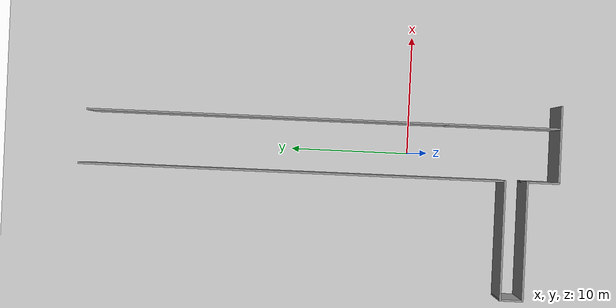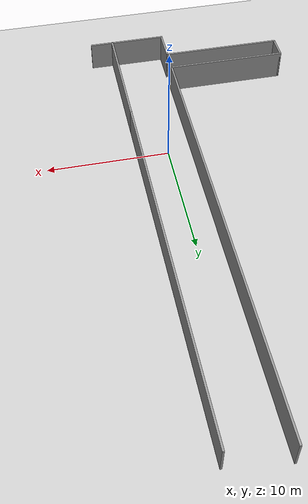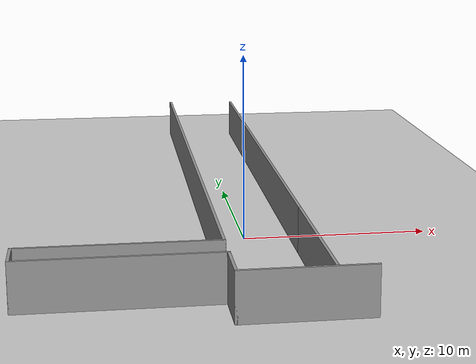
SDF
<sdf version="1.7">
 <world name="default">
  <light name="sun" type="directional">
   <pose>0 0 10 0 -0 0</pose>
   <diffuse>0.8 0.8 0.8 1</diffuse>
   <specular>0.2 0.2 0.2 1</specular>
   <attenuation>
    <range>1000</range>
    <constant>0.9</constant>
    <linear>0.01</linear>
    <quadratic>0.001</quadratic>
   </attenuation>
   <direction>-0.5 0.1 -0.9</direction>
   <spot><inner_angle>0</inner_angle><outer_angle>0</outer_angle><falloff>0</falloff></spot>
  </light>
  <model name="ground_plane">
   <static>1</static>
   <link name="link">
    <collision name="collision">
     <geometry><plane><normal>0 0 1</normal><size>100 100</size></plane></geometry>
     <surface>
      <contact><collide_bitmask>65535</collide_bitmask></contact>
      <friction><ode><mu>100</mu><mu2>50</mu2></ode></friction>
     </surface>
    </collision>
    <visual name="visual">
     <cast_shadows>0</cast_shadows>
     <geometry><plane><normal>0 0 1</normal><size>100 100</size></plane></geometry>
     <material>
      <script><uri>file://media/materials/scripts/gazebo.material</uri><name>Gazebo/Grey</name></script>
     </material>
    </visual>
   </link>
  </model>
  <gravity>0 0 -9.8</gravity>
  <magnetic_field>6e-06 2.3e-05 -4.2e-05</magnetic_field>
  <atmosphere type="adiabatic"/>
  <physics type="ode">
   <max_step_size>0.001</max_step_size>
   <real_time_factor>1</real_time_factor>
   <real_time_update_rate>1000</real_time_update_rate>
  </physics>
  <scene><ambient>0.4 0.4 0.4 1</ambient><background>0.7 0.7 0.7 1</background><shadows>1</shadows></scene>
  <spherical_coordinates>
   <surface_model>EARTH_WGS84</surface_model>
   <latitude_deg>0</latitude_deg>
   <longitude_deg>0</longitude_deg>
   <elevation>0</elevation>
   <heading_deg>0</heading_deg>
  </spherical_coordinates>
  <model name="collage.world">
   <pose>-3.71425 7.56909 0 0 -0 0</pose>
   <link name="Wall_10">
    <collision name="Wall_10_Collision">
     <geometry><box><size>2 0.15 2.5</size></box></geometry>
     <pose>0 0 1.25 0 -0 0</pose>
    </collision>
    <visual name="Wall_10_Visual">
     <pose>0 0 1.25 0 -0 0</pose>
     <geometry><box><size>2 0.15 2.5</size></box></geometry>
     <material>
      <script><uri>file://media/materials/scripts/gazebo.material</uri><name>Gazebo/Grey</name></script>
      <ambient>1 1 1 1</ambient>
     </material>
     <meta><layer>0</layer></meta>
    </visual>
    <pose>-8.1 -16.375 0 0 -0 -1.5708</pose>
   </link>
   <link name="Wall_11">
    <collision name="Wall_11_Collision">
     <geometry><box><size>10 0.15 2.5</size></box></geometry>
     <pose>0 0 1.25 0 -0 0</pose>
    </collision>
    <visual name="Wall_11_Visual">
     <pose>0 0 1.25 0 -0 0</pose>
     <geometry><box><size>10 0.15 2.5</size></box></geometry>
     <material>
      <script><uri>file://media/materials/scripts/gazebo.material</uri><name>Gazebo/Grey</name></script>
      <ambient>1 1 1 1</ambient>
     </material>
     <meta><layer>0</layer></meta>
    </visual>
    <pose>-3.175 -17.3 0 0 -0 0</pose>
   </link>
   <link name="Wall_13">
    <collision name="Wall_13_Collision">
     <geometry><box><size>10 0.15 2.5</size></box></geometry>
     <pose>0 0 1.25 0 -0 0</pose>
    </collision>
    <visual name="Wall_13_Visual">
     <pose>0 0 1.25 0 -0 0</pose>
     <geometry><box><size>10 0.15 2.5</size></box></geometry>
     <material>
      <script><uri>file://media/materials/scripts/gazebo.material</uri><name>Gazebo/Grey</name></script>
      <ambient>1 1 1 1</ambient>
     </material>
     <meta><layer>0</layer></meta>
    </visual>
    <pose>-3.175 -15.45 0 0 -0 0</pose>
   </link>
   <link name="Wall_14">
    <collision name="Wall_14_Collision">
     <geometry><box><size>0.15 0.15 2.5</size></box></geometry>
     <pose>0 0 1.25 0 -0 0</pose>
    </collision>
    <visual name="Wall_14_Visual">
     <pose>0 0 1.25 0 -0 0</pose>
     <geometry><box><size>0.15 0.15 2.5</size></box></geometry>
     <material>
      <script><uri>file://media/materials/scripts/gazebo.material</uri><name>Gazebo/Grey</name></script>
      <ambient>1 1 1 1</ambient>
     </material>
     <meta><layer>0</layer></meta>
    </visual>
    <pose>1.75 -15.45 0 0 -0 0</pose>
   </link>
   <link name="Wall_16">
    <collision name="Wall_16_Collision">
     <geometry><box><size>2.75 0.15 2.5</size></box></geometry>
     <pose>0 0 1.25 0 -0 0</pose>
    </collision>
    <visual name="Wall_16_Visual">
     <pose>0 0 1.25 0 -0 0</pose>
     <geometry><box><size>2.75 0.15 2.5</size></box></geometry>
     <material>
      <script><uri>file://media/materials/scripts/gazebo.material</uri><name>Gazebo/Grey</name></script>
      <ambient>1 1 1 1</ambient>
     </material>
     <meta><layer>0</layer></meta>
    </visual>
    <pose>1.75 -18.6 0 0 -0 -1.5708</pose>
   </link>
   <link name="Wall_17">
    <collision name="Wall_17_Collision">
     <geometry><box><size>6.5 0.15 2.5</size></box></geometry>
     <pose>0 0 1.25 0 -0 0</pose>
    </collision>
    <visual name="Wall_17_Visual">
     <pose>0 0 1.25 0 -0 0</pose>
     <geometry><box><size>6.5 0.15 2.5</size></box></geometry>
     <material>
      <script><uri>file://media/materials/scripts/gazebo.material</uri><name>Gazebo/Grey</name></script>
      <ambient>1 1 1 1</ambient>
     </material>
     <meta><layer>0</layer></meta>
    </visual>
    <pose>4.925 -19.9 0 0 -0 0</pose>
   </link>
   <link name="Wall_19">
    <collision name="Wall_19_Collision">
     <geometry><box><size>9.5 0.15 2.5</size></box></geometry>
     <pose>0 0 1.25 0 -0 0</pose>
    </collision>
    <visual name="Wall_19_Visual">
     <pose>0 0 1.25 0 -0 0</pose>
     <geometry><box><size>9.5 0.15 2.5</size></box></geometry>
     <material>
      <script><uri>file://media/materials/scripts/gazebo.material</uri><name>Gazebo/Grey</name></script>
      <ambient>1 1 1 1</ambient>
     </material>
     <meta><layer>0</layer></meta>
    </visual>
    <pose>6.24893 -15.1823 0 0 -0 1.5708</pose>
   </link>
   <link name="Wall_21">
    <collision name="Wall_21_Collision">
     <geometry><box><size>35.5 0.15 2.5</size></box></geometry>
     <pose>0 0 1.25 0 -0 0</pose>
    </collision>
    <visual name="Wall_21_Visual">
     <pose>0 0 1.25 0 -0 0</pose>
     <geometry><box><size>35.5 0.15 2.5</size></box></geometry>
     <material>
      <script><uri>file://media/materials/scripts/gazebo.material</uri><name>Gazebo/Grey</name></script>
      <ambient>1 1 1 1</ambient>
     </material>
     <meta><layer>0</layer></meta>
    </visual>
    <pose>1.75 2.225 0 0 -0 1.5708</pose>
   </link>
   <link name="Wall_24">
    <collision name="Wall_24_Collision">
     <geometry><box><size>30 0.15 2.5</size></box></geometry>
     <pose>0 0 1.25 0 -0 0</pose>
    </collision>
    <visual name="Wall_24_Visual">
     <pose>0 0 1.25 0 -0 0</pose>
     <geometry><box><size>30 0.15 2.5</size></box></geometry>
     <material>
      <script><uri>file://media/materials/scripts/gazebo.material</uri><name>Gazebo/Grey</name></script>
      <ambient>1 1 1 1</ambient>
     </material>
     <meta><layer>0</layer></meta>
    </visual>
    <pose>6.24893 4.41767 0 0 -0 1.5708</pose>
   </link>
   <static>1</static>
  </model>
 </world>
</sdf>
